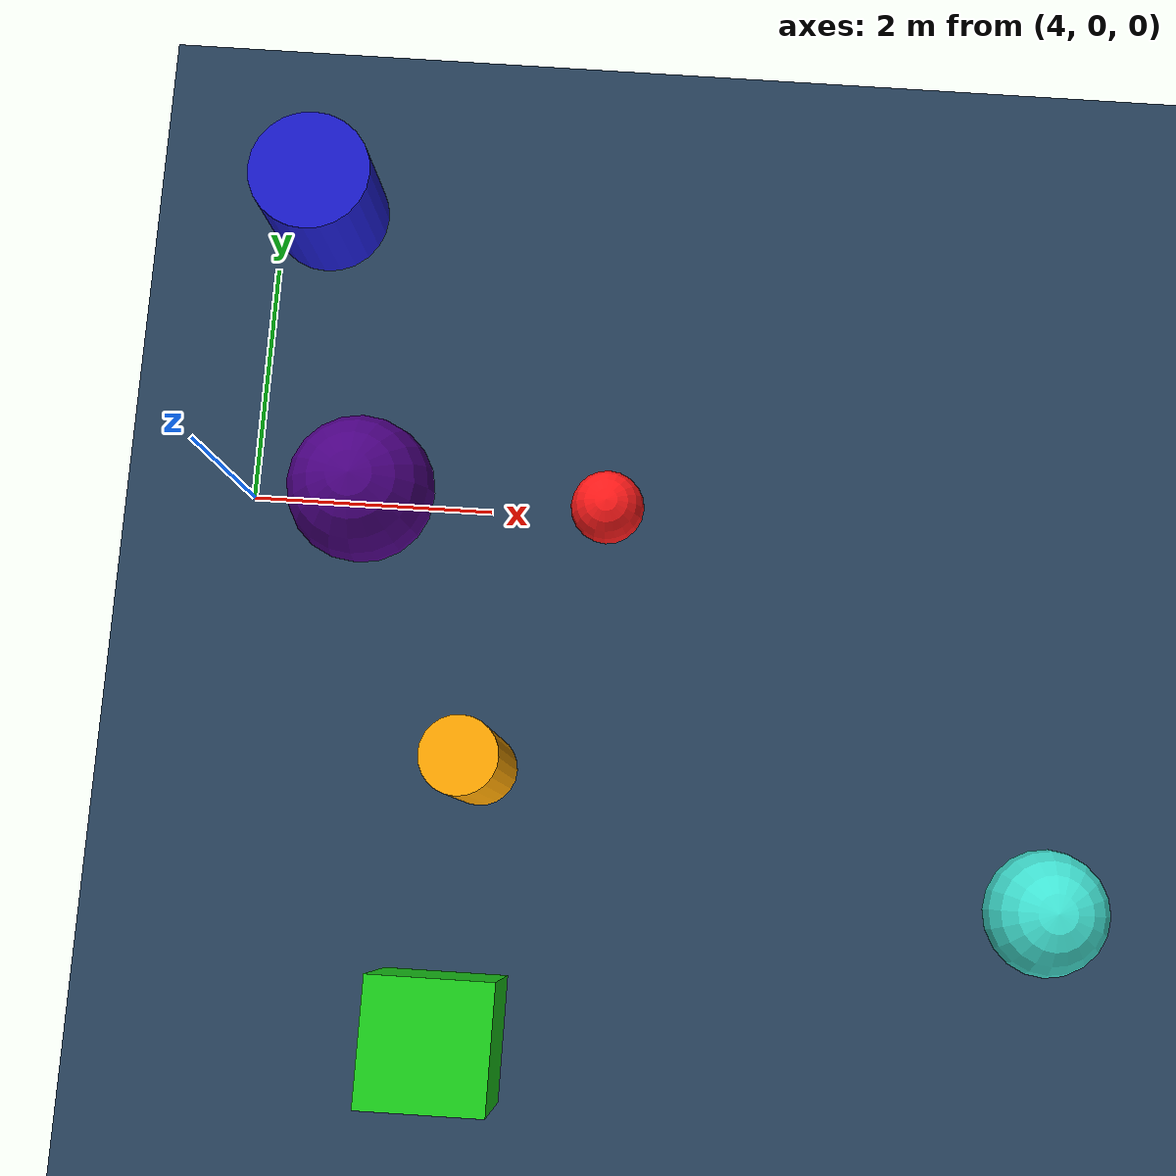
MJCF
<mujoco model="my_robot">
    <option timestep="0.01" gravity="0 0 -9.81"/>
    <default>
        <geom friction="1 0.005 0.0001" />
    </default>

    <visual>
        <quality shadowsize="4096"/>
        <headlight diffuse="0.4 0.4 0.4" ambient="0.25 0.25 0.25" specular="0 0 0"/>
        <rgba haze="0.15 0.25 0.35 1"/>
        <global azimuth="-130" elevation="-20"/>
    </visual>

    <asset>
        <texture type="skybox" builtin="gradient" rgb1="0.3 0.5 0.7" rgb2="0 0 0" width="512" height="3072"/>
        <texture type="2d" name="groundplane" builtin="checker" mark="edge" rgb1="0.2 0.3 0.4" rgb2="0.1 0.2 0.3" markrgb="0.8 0.8 0.8" width="300" height="300"/>
        <material name="groundplane" texture="groundplane" texuniform="true" texrepeat="5 5"/>

        <material name="MatTurquoise" rgba="0.25 0.88 0.82 1"/>
        <material name="MatIndigo" rgba="0.29 0 0.51 1"/>
        <material name="MatBlue" rgba="0.1 0.1 0.8 1"/>
        <material name="MatGreen" rgba="0.1 0.8 0.1 1"/>
        <material name="MatBarrel" rgba="1 0.65 0 1"/>
        <material name="MatRed" rgba="1 0.1 0.1 1"/>
    </asset>

    <worldbody>
        <light pos="0 0 10" dir="0 0 -1" directional="true" diffuse="0.4 0.4 0.4" castshadow="false"/>
        <light pos="5 -3 8" dir="0.2 0.1 -1" directional="false" cutoff="55" exponent="8" diffuse="0.7 0.7 0.7" specular="0.1 0.1 0.1" castshadow="true"/>
        <geom name="floor" size="0 0 0.05" type="plane" material="groundplane"/>

        <body name="turquoise_sphere" pos="10.66794 -3.03143 0.5">
            <joint type="free"/>
            <geom type="sphere" size="0.5" material="MatTurquoise" mass="1"/>
        </body>

        <body name="indigo_sphere" pos="5 0 0.6">
            <joint type="free"/>
            <geom type="sphere" size="0.6" material="MatIndigo" mass="1"/>
        </body>

        <body name="blue_cylinder" pos="4.40257 2.5337 0.5">
            <joint type="free"/>
            <geom type="cylinder" size="0.5 0.5" material="MatBlue" mass="1"/>
        </body>

        <body name="green_box" pos="5.94117 -4.31015 0.5">
            <joint type="free"/>
            <geom type="box" size="0.5 0.5 0.5" material="MatGreen" mass="1"/>
        </body>

        <body name="barrel" pos="6.08969 -2.16086 0.8">
            <joint type="free"/>
            <geom type="cylinder" size="0.3 0.8" material="MatBarrel" mass="10"/>
        </body>

        <body name="moving_ball" pos="7 0 0.5">
            <joint name="ball_slider" type="slide" axis="0 1 0" range="-20 20"/>
            <geom type="sphere" size="0.3" material="MatRed"/>
        </body>

    </worldbody>

    <actuator>
        <position name="ball_actuator" joint="ball_slider" kp="100"/>
    </actuator>

</mujoco>
